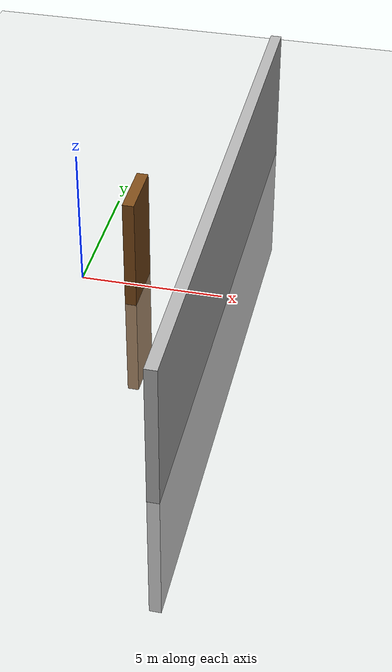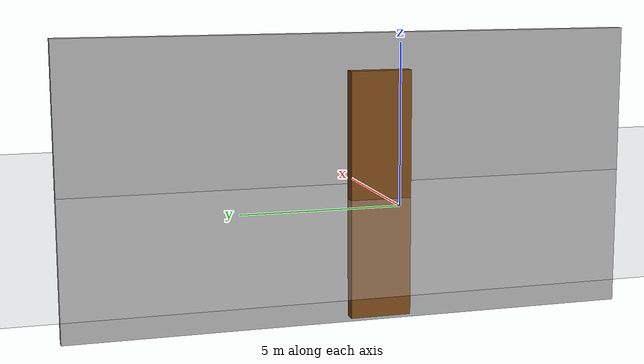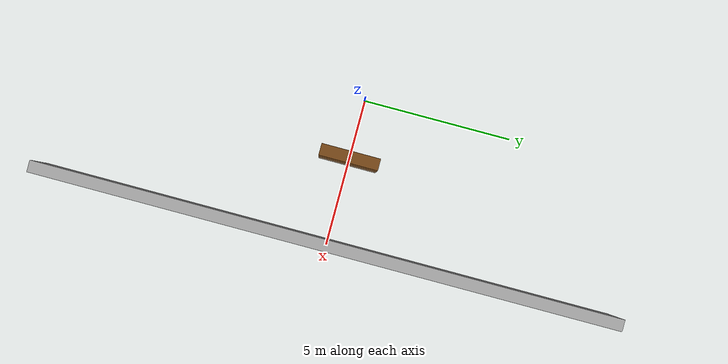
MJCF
<mujoco>
  <option gravity="0 0 -9.81"/>
  <worldbody>
    <body name="wall" pos="5 0 0">
      <geom type="box" size="0.2 10 5" friction="0 0 0" rgba="0.7 0.7 0.7 1"/>
    </body>
    <body name="ground" pos="0 0 -0.1">
      <geom type="plane" size="30 30 0.1" friction="1 1 1" rgba="0.8 0.8 0.8 1"/>
    </body>
    <body name="ladder" pos="2 0 0">
      <geom type="box" size="0.2 1 4" friction="0.6 0.6 0.6" rgba="0.5 0.3 0.1 1"/>
      <joint type="free"/>
    </body>
    <body name="person" pos="2 0 2">
      <geom type="capsule" fromto="0 0 0 0 0 1.5" size="0.2" density="800" rgba="0.8 0.2 0.2 1"/>
    </body>
  </worldbody>
</mujoco>
